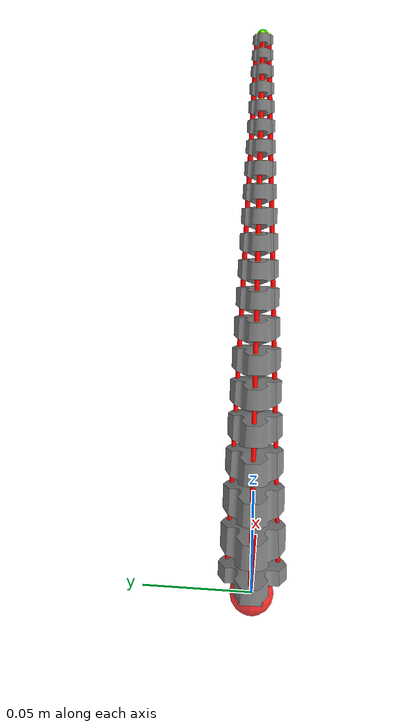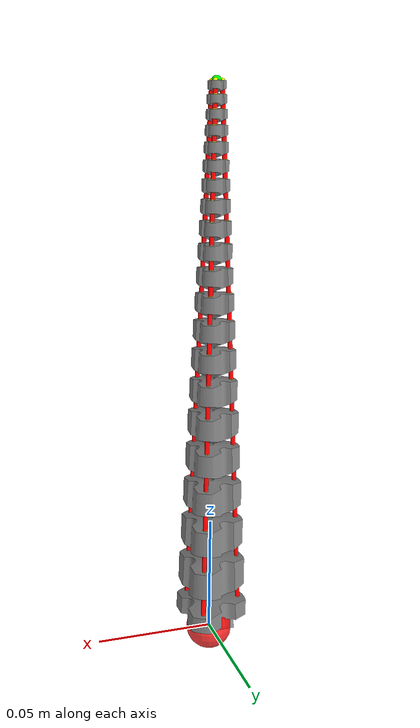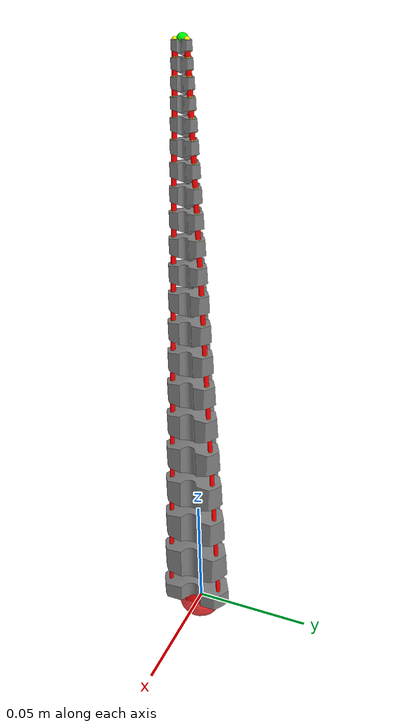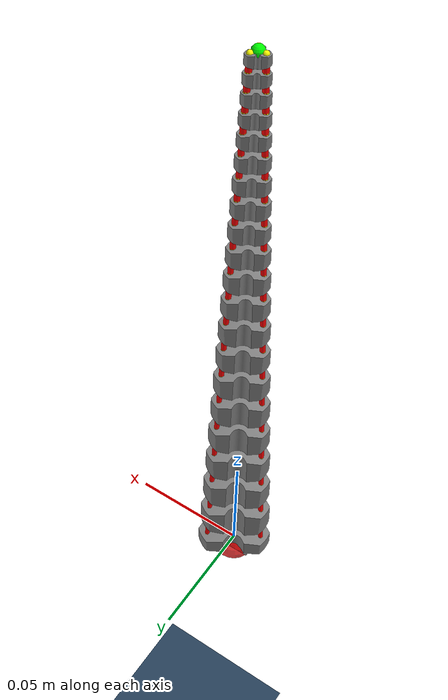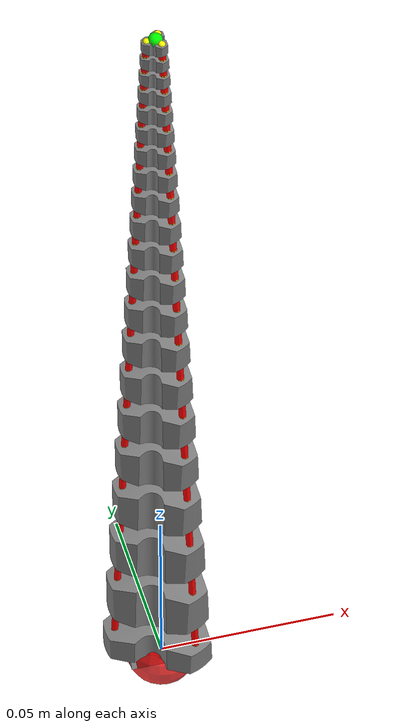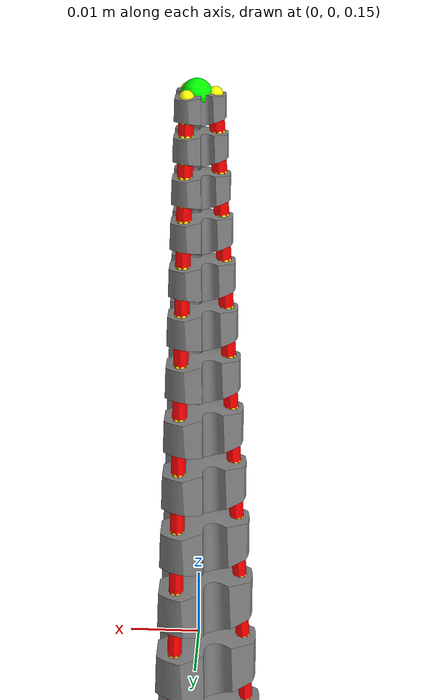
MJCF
<?xml version="1.0" ?>
<mujoco model="tentacle">
  <compiler angle="radian" autolimits="true"/>
  <option timestep="0.005" iterations="50"/>
  <default>
    <joint stiffness="0.0" damping="0.0" range="0 0.9"/>
    <geom type="mesh" xyaxes="0 0 -1 -1 0 0" contype="0" conaffinity="0" margin="0.001" solref="0.01 1" solimp="0.9 0.95 0.001"/>
  </default>
  <asset>
    <mesh name="mesh1" file="mujoco_rex_assets/Part1.stl" scale="0.001 0.001 0.001"/>
    <mesh name="mesh2" file="mujoco_rex_assets/Part2.stl" scale="0.001 0.001 0.001"/>
    <mesh name="mesh3" file="mujoco_rex_assets/Part3.stl" scale="0.001 0.001 0.001"/>
    <mesh name="mesh4" file="mujoco_rex_assets/Part4.stl" scale="0.001 0.001 0.001"/>
    <mesh name="mesh5" file="mujoco_rex_assets/Part5.stl" scale="0.001 0.001 0.001"/>
    <mesh name="mesh6" file="mujoco_rex_assets/Part6.stl" scale="0.001 0.001 0.001"/>
    <mesh name="mesh7" file="mujoco_rex_assets/Part7.stl" scale="0.001 0.001 0.001"/>
    <mesh name="mesh8" file="mujoco_rex_assets/Part8.stl" scale="0.001 0.001 0.001"/>
    <mesh name="mesh9" file="mujoco_rex_assets/Part9.stl" scale="0.001 0.001 0.001"/>
    <mesh name="mesh10" file="mujoco_rex_assets/Part10.stl" scale="0.001 0.001 0.001"/>
    <mesh name="mesh11" file="mujoco_rex_assets/Part11.stl" scale="0.001 0.001 0.001"/>
    <mesh name="mesh12" file="mujoco_rex_assets/Part12.stl" scale="0.001 0.001 0.001"/>
    <mesh name="mesh13" file="mujoco_rex_assets/Part13.stl" scale="0.001 0.001 0.001"/>
    <mesh name="mesh14" file="mujoco_rex_assets/Part14.stl" scale="0.001 0.001 0.001"/>
    <mesh name="mesh15" file="mujoco_rex_assets/Part15.stl" scale="0.001 0.001 0.001"/>
    <mesh name="mesh16" file="mujoco_rex_assets/Part16.stl" scale="0.001 0.001 0.001"/>
    <mesh name="mesh17" file="mujoco_rex_assets/Part17.stl" scale="0.001 0.001 0.001"/>
    <mesh name="mesh18" file="mujoco_rex_assets/Part18.stl" scale="0.001 0.001 0.001"/>
    <mesh name="mesh19" file="mujoco_rex_assets/Part19.stl" scale="0.001 0.001 0.001"/>
    <mesh name="mesh20" file="mujoco_rex_assets/Part20.stl" scale="0.001 0.001 0.001"/>
    <mesh name="mesh21" file="mujoco_rex_assets/Part21.stl" scale="0.001 0.001 0.001"/>
    <texture type="skybox" builtin="gradient" rgb1="0.3 0.5 0.7" rgb2="0 0 0" width="512" height="3072"/>
    <texture type="2d" name="groundplane" builtin="checker" mark="edge" rgb1="0.2 0.3 0.4" rgb2="0.1 0.2 0.3" markrgb="0.8 0.8 0.8" width="300" height="300"/>
    <material name="groundplane" texture="groundplane" texuniform="true" texrepeat="5 5" reflectance="0.2"/>
  </asset>
  <visual>
    <headlight diffuse="0.6 0.6 0.6" ambient="0.3 0.3 0.3" specular="0 0 0"/>
    <rgba haze="0.15 0.25 0.35 1"/>
    <global azimuth="150" elevation="-20"/>
  </visual>
  <worldbody>
    <light pos="0 0 3" dir="0 0 -1" directional="false"/>
    <geom name="floor" pos="0 0 -0.2" size="0 0 .125" type="plane" material="groundplane" conaffinity="0" condim="3" xyaxes="1 0 0 0 1 0"/>
    <camera name="fixed_overview" mode="fixed" pos="0 -0.5 0.7" quat="0.924 0.383 0 0" fovy="60"/>
    <camera name="tracking_cam" mode="fixed" pos="0.3 -0.3 0.4" quat="0.854 0.354 0.146 0.354" fovy="75"/>
    <site name="target" type="sphere" size="0.01 0.01 0.01" rgba="1 0 0 0.8" pos="0 0 0"/>
    <body name="body1" pos="0 0 0">
      <geom name="geom1" type="mesh" mesh="mesh1" contype="0" conaffinity="0"/>
      <body name="body2" pos="0 0 0">
        <geom name="geom2" type="mesh" mesh="mesh2" contype="0" conaffinity="0"/>
        <joint type="ball" name="joint1" pos="0 0 0.0143255" stiffness="0.14107" damping="0.0098749"/>
        <body name="body3" pos="0 0 0">
          <geom name="geom3" type="mesh" mesh="mesh3" contype="0" conaffinity="0"/>
          <joint type="ball" name="joint2" pos="0 0 0.034275" stiffness="0.12269" damping="0.0085881"/>
          <body name="body4" pos="0 0 0">
            <geom name="geom4" type="mesh" mesh="mesh4" contype="0" conaffinity="0"/>
            <joint type="ball" name="joint3" pos="0 0 0.052814" stiffness="0.1067" damping="0.007469"/>
            <body name="body5" pos="0 0 0">
              <geom name="geom5" type="mesh" mesh="mesh5" contype="0" conaffinity="0"/>
              <joint type="ball" name="joint4" pos="0 0 0.0700425" stiffness="0.092797" damping="0.0064958"/>
              <body name="body6" pos="0 0 0">
                <geom name="geom6" type="mesh" mesh="mesh6" contype="0" conaffinity="0"/>
                <joint type="ball" name="joint5" pos="0 0 0.0860535" stiffness="0.080705" damping="0.0056493"/>
                <body name="body7" pos="0 0 0">
                  <geom name="geom7" type="mesh" mesh="mesh7" contype="0" conaffinity="0"/>
                  <joint type="ball" name="joint6" pos="0 0 0.1009325" stiffness="0.070188" damping="0.0049132"/>
                  <body name="body8" pos="0 0 0">
                    <geom name="geom8" type="mesh" mesh="mesh8" contype="0" conaffinity="0"/>
                    <joint type="ball" name="joint7" pos="0 0 0.11476" stiffness="0.061042" damping="0.004273"/>
                    <body name="body9" pos="0 0 0">
                      <geom name="geom9" type="mesh" mesh="mesh9" contype="0" conaffinity="0"/>
                      <joint type="ball" name="joint8" pos="0 0 0.12761" stiffness="0.053088" damping="0.0037162"/>
                      <body name="body10" pos="0 0 0">
                        <geom name="geom10" type="mesh" mesh="mesh10" contype="0" conaffinity="0"/>
                        <joint type="ball" name="joint9" pos="0 0 0.13955" stiffness="0.04617" damping="0.0032319"/>
                        <body name="body11" pos="0 0 0">
                          <geom name="geom11" type="mesh" mesh="mesh11" contype="0" conaffinity="0"/>
                          <joint type="ball" name="joint10" pos="0 0 0.150649" stiffness="0.040154" damping="0.0028108"/>
                          <body name="body12" pos="0 0 0">
                            <geom name="geom12" type="mesh" mesh="mesh12" contype="0" conaffinity="0"/>
                            <joint type="ball" name="joint11" pos="0 0 0.160962" stiffness="0.034922" damping="0.0024445"/>
                            <body name="body13" pos="0 0 0">
                              <geom name="geom13" type="mesh" mesh="mesh13" contype="0" conaffinity="0"/>
                              <joint type="ball" name="joint12" pos="0 0 0.17055" stiffness="0.030371" damping="0.002126"/>
                              <body name="body14" pos="0 0 0">
                                <geom name="geom14" type="mesh" mesh="mesh14" contype="0" conaffinity="0"/>
                                <joint type="ball" name="joint13" pos="0 0 0.179453" stiffness="0.026414" damping="0.001849"/>
                                <body name="body15" pos="0 0 0">
                                  <geom name="geom15" type="mesh" mesh="mesh15" contype="0" conaffinity="0"/>
                                  <joint type="ball" name="joint14" pos="0 0 0.18773" stiffness="0.022972" damping="0.001608"/>
                                  <body name="body16" pos="0 0 0">
                                    <geom name="geom16" type="mesh" mesh="mesh16" contype="0" conaffinity="0"/>
                                    <joint type="ball" name="joint15" pos="0 0 0.19542" stiffness="0.019978" damping="0.0013985"/>
                                    <body name="body17" pos="0 0 0">
                                      <geom name="geom17" type="mesh" mesh="mesh17" contype="0" conaffinity="0"/>
                                      <joint type="ball" name="joint16" pos="0 0 0.202571" stiffness="0.017375" damping="0.0012163"/>
                                      <body name="body18" pos="0 0 0">
                                        <geom name="geom18" type="mesh" mesh="mesh18" contype="0" conaffinity="0"/>
                                        <joint type="ball" name="joint17" pos="0 0 0.2092135" stiffness="0.015111" damping="0.0010578"/>
                                        <body name="body19" pos="0 0 0">
                                          <geom name="geom19" type="mesh" mesh="mesh19" contype="0" conaffinity="0"/>
                                          <joint type="ball" name="joint18" pos="0 0 0.2153875" stiffness="0.013142" damping="0.00091994"/>
                                          <body name="body20" pos="0 0 0">
                                            <geom name="geom20" type="mesh" mesh="mesh20" contype="0" conaffinity="0"/>
                                            <joint type="ball" name="joint19" pos="0 0 0.2211245" stiffness="0.01143" damping="0.00080007"/>
                                            <body name="body21" pos="0 0 0">
                                              <geom name="geom21" type="mesh" mesh="mesh21" contype="0" conaffinity="0"/>
                                              <joint type="ball" name="joint20" pos="0 0 0.2264565" stiffness="0.0099402" damping="0.00069581"/>
                                              <site name="site_in_20_0" pos="0.00125 0.00216 0.22796" size="0.001" rgba="1 1 0 1"/>
                                              <site name="site_out_20_0" pos="0.00117 0.00204 0.23087" size="0.001" rgba="1 1 0 1"/>
                                              <site name="site_in_20_1" pos="-0.00250 0.00000 0.22796" size="0.001" rgba="1 1 0 1"/>
                                              <site name="site_out_20_1" pos="-0.00235 0.00000 0.23087" size="0.001" rgba="1 1 0 1"/>
                                              <site name="site_in_20_2" pos="0.00125 -0.00216 0.22796" size="0.001" rgba="1 1 0 1"/>
                                              <site name="site_out_20_2" pos="0.00117 -0.00204 0.23087" size="0.001" rgba="1 1 0 1"/>
                                              <site name="tip_center" pos="0 0 0.230871" size="0.002" rgba="0 1 0 1"/>
                                            </body>
                                            <site name="site_in_19_0" pos="0.00138 0.00239 0.22275" size="0.001" rgba="1 1 0 1"/>
                                            <site name="site_out_19_0" pos="0.00130 0.00225 0.22588" size="0.001" rgba="1 1 0 1"/>
                                            <site name="site_in_19_1" pos="-0.00276 0.00000 0.22275" size="0.001" rgba="1 1 0 1"/>
                                            <site name="site_out_19_1" pos="-0.00260 0.00000 0.22588" size="0.001" rgba="1 1 0 1"/>
                                            <site name="site_in_19_2" pos="0.00138 -0.00239 0.22275" size="0.001" rgba="1 1 0 1"/>
                                            <site name="site_out_19_2" pos="0.00130 -0.00225 0.22588" size="0.001" rgba="1 1 0 1"/>
                                          </body>
                                          <site name="site_in_18_0" pos="0.00152 0.00264 0.21713" size="0.001" rgba="1 1 0 1"/>
                                          <site name="site_out_18_0" pos="0.00144 0.00249 0.22050" size="0.001" rgba="1 1 0 1"/>
                                          <site name="site_in_18_1" pos="-0.00304 0.00000 0.21713" size="0.001" rgba="1 1 0 1"/>
                                          <site name="site_out_18_1" pos="-0.00287 0.00000 0.22050" size="0.001" rgba="1 1 0 1"/>
                                          <site name="site_in_18_2" pos="0.00152 -0.00264 0.21713" size="0.001" rgba="1 1 0 1"/>
                                          <site name="site_out_18_2" pos="0.00144 -0.00249 0.22050" size="0.001" rgba="1 1 0 1"/>
                                        </body>
                                        <site name="site_in_17_0" pos="0.00167 0.00290 0.21109" size="0.001" rgba="1 1 0 1"/>
                                        <site name="site_out_17_0" pos="0.00158 0.00274 0.21472" size="0.001" rgba="1 1 0 1"/>
                                        <site name="site_in_17_1" pos="-0.00335 0.00000 0.21109" size="0.001" rgba="1 1 0 1"/>
                                        <site name="site_out_17_1" pos="-0.00316 0.00000 0.21472" size="0.001" rgba="1 1 0 1"/>
                                        <site name="site_in_17_2" pos="0.00167 -0.00290 0.21109" size="0.001" rgba="1 1 0 1"/>
                                        <site name="site_out_17_2" pos="0.00158 -0.00274 0.21472" size="0.001" rgba="1 1 0 1"/>
                                      </body>
                                      <site name="site_in_16_0" pos="0.00184 0.00318 0.20459" size="0.001" rgba="1 1 0 1"/>
                                      <site name="site_out_16_0" pos="0.00174 0.00301 0.20849" size="0.001" rgba="1 1 0 1"/>
                                      <site name="site_in_16_1" pos="-0.00368 0.00000 0.20459" size="0.001" rgba="1 1 0 1"/>
                                      <site name="site_out_16_1" pos="-0.00348 0.00000 0.20849" size="0.001" rgba="1 1 0 1"/>
                                      <site name="site_in_16_2" pos="0.00184 -0.00318 0.20459" size="0.001" rgba="1 1 0 1"/>
                                      <site name="site_out_16_2" pos="0.00174 -0.00301 0.20849" size="0.001" rgba="1 1 0 1"/>
                                    </body>
                                    <site name="site_in_15_0" pos="0.00201 0.00349 0.19760" size="0.001" rgba="1 1 0 1"/>
                                    <site name="site_out_15_0" pos="0.00191 0.00331 0.20179" size="0.001" rgba="1 1 0 1"/>
                                    <site name="site_in_15_1" pos="-0.00403 0.00000 0.19760" size="0.001" rgba="1 1 0 1"/>
                                    <site name="site_out_15_1" pos="-0.00382 0.00000 0.20179" size="0.001" rgba="1 1 0 1"/>
                                    <site name="site_in_15_2" pos="0.00201 -0.00349 0.19760" size="0.001" rgba="1 1 0 1"/>
                                    <site name="site_out_15_2" pos="0.00191 -0.00331 0.20179" size="0.001" rgba="1 1 0 1"/>
                                  </body>
                                  <site name="site_in_14_0" pos="0.00220 0.00382 0.19007" size="0.001" rgba="1 1 0 1"/>
                                  <site name="site_out_14_0" pos="0.00209 0.00362 0.19459" size="0.001" rgba="1 1 0 1"/>
                                  <site name="site_in_14_1" pos="-0.00441 0.00000 0.19007" size="0.001" rgba="1 1 0 1"/>
                                  <site name="site_out_14_1" pos="-0.00418 0.00000 0.19459" size="0.001" rgba="1 1 0 1"/>
                                  <site name="site_in_14_2" pos="0.00220 -0.00382 0.19007" size="0.001" rgba="1 1 0 1"/>
                                  <site name="site_out_14_2" pos="0.00209 -0.00362 0.19459" size="0.001" rgba="1 1 0 1"/>
                                </body>
                                <site name="site_in_13_0" pos="0.00241 0.00417 0.18198" size="0.001" rgba="1 1 0 1"/>
                                <site name="site_out_13_0" pos="0.00229 0.00396 0.18684" size="0.001" rgba="1 1 0 1"/>
                                <site name="site_in_13_1" pos="-0.00482 0.00000 0.18198" size="0.001" rgba="1 1 0 1"/>
                                <site name="site_out_13_1" pos="-0.00457 0.00000 0.18684" size="0.001" rgba="1 1 0 1"/>
                                <site name="site_in_13_2" pos="0.00241 -0.00417 0.18198" size="0.001" rgba="1 1 0 1"/>
                                <site name="site_out_13_2" pos="0.00229 -0.00396 0.18684" size="0.001" rgba="1 1 0 1"/>
                              </body>
                              <site name="site_in_12_0" pos="0.00263 0.00455 0.17326" size="0.001" rgba="1 1 0 1"/>
                              <site name="site_out_12_0" pos="0.00250 0.00432 0.17849" size="0.001" rgba="1 1 0 1"/>
                              <site name="site_in_12_1" pos="-0.00526 0.00000 0.17326" size="0.001" rgba="1 1 0 1"/>
                              <site name="site_out_12_1" pos="-0.00499 0.00000 0.17849" size="0.001" rgba="1 1 0 1"/>
                              <site name="site_in_12_2" pos="0.00263 -0.00455 0.17326" size="0.001" rgba="1 1 0 1"/>
                              <site name="site_out_12_2" pos="0.00250 -0.00432 0.17849" size="0.001" rgba="1 1 0 1"/>
                            </body>
                            <site name="site_in_11_0" pos="0.00286 0.00496 0.16389" size="0.001" rgba="1 1 0 1"/>
                            <site name="site_out_11_0" pos="0.00272 0.00471 0.16951" size="0.001" rgba="1 1 0 1"/>
                            <site name="site_in_11_1" pos="-0.00573 0.00000 0.16389" size="0.001" rgba="1 1 0 1"/>
                            <site name="site_out_11_1" pos="-0.00544 0.00000 0.16951" size="0.001" rgba="1 1 0 1"/>
                            <site name="site_in_11_2" pos="0.00286 -0.00496 0.16389" size="0.001" rgba="1 1 0 1"/>
                            <site name="site_out_11_2" pos="0.00272 -0.00471 0.16951" size="0.001" rgba="1 1 0 1"/>
                          </body>
                          <site name="site_in_10_0" pos="0.00312 0.00540 0.15379" size="0.001" rgba="1 1 0 1"/>
                          <site name="site_out_10_0" pos="0.00297 0.00514 0.15985" size="0.001" rgba="1 1 0 1"/>
                          <site name="site_in_10_1" pos="-0.00624 0.00000 0.15379" size="0.001" rgba="1 1 0 1"/>
                          <site name="site_out_10_1" pos="-0.00593 0.00000 0.15985" size="0.001" rgba="1 1 0 1"/>
                          <site name="site_in_10_2" pos="0.00312 -0.00540 0.15379" size="0.001" rgba="1 1 0 1"/>
                          <site name="site_out_10_2" pos="0.00297 -0.00514 0.15985" size="0.001" rgba="1 1 0 1"/>
                        </body>
                        <site name="site_in_9_0" pos="0.00339 0.00588 0.14294" size="0.001" rgba="1 1 0 1"/>
                        <site name="site_out_9_0" pos="0.00323 0.00559 0.14945" size="0.001" rgba="1 1 0 1"/>
                        <site name="site_in_9_1" pos="-0.00678 0.00000 0.14294" size="0.001" rgba="1 1 0 1"/>
                        <site name="site_out_9_1" pos="-0.00646 0.00000 0.14945" size="0.001" rgba="1 1 0 1"/>
                        <site name="site_in_9_2" pos="0.00339 -0.00588 0.14294" size="0.001" rgba="1 1 0 1"/>
                        <site name="site_out_9_2" pos="0.00323 -0.00559 0.14945" size="0.001" rgba="1 1 0 1"/>
                      </body>
                      <site name="site_in_8_0" pos="0.00369 0.00639 0.13125" size="0.001" rgba="1 1 0 1"/>
                      <site name="site_out_8_0" pos="0.00351 0.00608 0.13826" size="0.001" rgba="1 1 0 1"/>
                      <site name="site_in_8_1" pos="-0.00737 0.00000 0.13125" size="0.001" rgba="1 1 0 1"/>
                      <site name="site_out_8_1" pos="-0.00702 0.00000 0.13826" size="0.001" rgba="1 1 0 1"/>
                      <site name="site_in_8_2" pos="0.00369 -0.00639 0.13125" size="0.001" rgba="1 1 0 1"/>
                      <site name="site_out_8_2" pos="0.00351 -0.00608 0.13826" size="0.001" rgba="1 1 0 1"/>
                    </body>
                    <site name="site_in_7_0" pos="0.00400 0.00693 0.11868" size="0.001" rgba="1 1 0 1"/>
                    <site name="site_out_7_0" pos="0.00381 0.00661 0.12622" size="0.001" rgba="1 1 0 1"/>
                    <site name="site_in_7_1" pos="-0.00801 0.00000 0.11868" size="0.001" rgba="1 1 0 1"/>
                    <site name="site_out_7_1" pos="-0.00763 0.00000 0.12622" size="0.001" rgba="1 1 0 1"/>
                    <site name="site_in_7_2" pos="0.00400 -0.00693 0.11868" size="0.001" rgba="1 1 0 1"/>
                    <site name="site_out_7_2" pos="0.00381 -0.00661 0.12622" size="0.001" rgba="1 1 0 1"/>
                  </body>
                  <site name="site_in_6_0" pos="0.00434 0.00753 0.10515" size="0.001" rgba="1 1 0 1"/>
                  <site name="site_out_6_0" pos="0.00414 0.00717 0.11327" size="0.001" rgba="1 1 0 1"/>
                  <site name="site_in_6_1" pos="-0.00869 0.00000 0.10515" size="0.001" rgba="1 1 0 1"/>
                  <site name="site_out_6_1" pos="-0.00828 0.00000 0.11327" size="0.001" rgba="1 1 0 1"/>
                  <site name="site_in_6_2" pos="0.00434 -0.00753 0.10515" size="0.001" rgba="1 1 0 1"/>
                  <site name="site_out_6_2" pos="0.00414 -0.00717 0.11327" size="0.001" rgba="1 1 0 1"/>
                </body>
                <site name="site_in_5_0" pos="0.00471 0.00816 0.09060" size="0.001" rgba="1 1 0 1"/>
                <site name="site_out_5_0" pos="0.00449 0.00778 0.09933" size="0.001" rgba="1 1 0 1"/>
                <site name="site_in_5_1" pos="-0.00942 0.00000 0.09060" size="0.001" rgba="1 1 0 1"/>
                <site name="site_out_5_1" pos="-0.00898 0.00000 0.09933" size="0.001" rgba="1 1 0 1"/>
                <site name="site_in_5_2" pos="0.00471 -0.00816 0.09060" size="0.001" rgba="1 1 0 1"/>
                <site name="site_out_5_2" pos="0.00449 -0.00778 0.09933" size="0.001" rgba="1 1 0 1"/>
              </body>
              <site name="site_in_4_0" pos="0.00511 0.00885 0.07493" size="0.001" rgba="1 1 0 1"/>
              <site name="site_out_4_0" pos="0.00487 0.00843 0.08433" size="0.001" rgba="1 1 0 1"/>
              <site name="site_in_4_1" pos="-0.01021 0.00000 0.07493" size="0.001" rgba="1 1 0 1"/>
              <site name="site_out_4_1" pos="-0.00974 0.00000 0.08433" size="0.001" rgba="1 1 0 1"/>
              <site name="site_in_4_2" pos="0.00511 -0.00885 0.07493" size="0.001" rgba="1 1 0 1"/>
              <site name="site_out_4_2" pos="0.00487 -0.00843 0.08433" size="0.001" rgba="1 1 0 1"/>
            </body>
            <site name="site_in_3_0" pos="0.00553 0.00958 0.05808" size="0.001" rgba="1 1 0 1"/>
            <site name="site_out_3_0" pos="0.00528 0.00914 0.06819" size="0.001" rgba="1 1 0 1"/>
            <site name="site_in_3_1" pos="-0.01106 0.00000 0.05808" size="0.001" rgba="1 1 0 1"/>
            <site name="site_out_3_1" pos="-0.01055 0.00000 0.06819" size="0.001" rgba="1 1 0 1"/>
            <site name="site_in_3_2" pos="0.00553 -0.00958 0.05808" size="0.001" rgba="1 1 0 1"/>
            <site name="site_out_3_2" pos="0.00528 -0.00914 0.06819" size="0.001" rgba="1 1 0 1"/>
          </body>
          <site name="site_in_2_0" pos="0.00599 0.01037 0.03994" size="0.001" rgba="1 1 0 1"/>
          <site name="site_out_2_0" pos="0.00571 0.00990 0.05082" size="0.001" rgba="1 1 0 1"/>
          <site name="site_in_2_1" pos="-0.01198 0.00000 0.03994" size="0.001" rgba="1 1 0 1"/>
          <site name="site_out_2_1" pos="-0.01143 0.00000 0.05082" size="0.001" rgba="1 1 0 1"/>
          <site name="site_in_2_2" pos="0.00599 -0.01037 0.03994" size="0.001" rgba="1 1 0 1"/>
          <site name="site_out_2_2" pos="0.00571 -0.00990 0.05082" size="0.001" rgba="1 1 0 1"/>
        </body>
        <site name="site_in_1_0" pos="0.00648 0.01123 0.02042" size="0.001" rgba="1 1 0 1"/>
        <site name="site_out_1_0" pos="0.00619 0.01071 0.03213" size="0.001" rgba="1 1 0 1"/>
        <site name="site_in_1_1" pos="-0.01296 0.00000 0.02042" size="0.001" rgba="1 1 0 1"/>
        <site name="site_out_1_1" pos="-0.01237 0.00000 0.03213" size="0.001" rgba="1 1 0 1"/>
        <site name="site_in_1_2" pos="0.00648 -0.01123 0.02042" size="0.001" rgba="1 1 0 1"/>
        <site name="site_out_1_2" pos="0.00619 -0.01071 0.03213" size="0.001" rgba="1 1 0 1"/>
      </body>
      <site name="site_in_0_0" pos="0.00687 0.01190 0.00500" size="0.001" rgba="1 1 0 1"/>
      <site name="site_out_0_0" pos="0.00669 0.01159 0.01202" size="0.001" rgba="1 1 0 1"/>
      <site name="site_in_0_1" pos="-0.01374 0.00000 0.00500" size="0.001" rgba="1 1 0 1"/>
      <site name="site_out_0_1" pos="-0.01339 0.00000 0.01202" size="0.001" rgba="1 1 0 1"/>
      <site name="site_in_0_2" pos="0.00687 -0.01190 0.00500" size="0.001" rgba="1 1 0 1"/>
      <site name="site_out_0_2" pos="0.00669 -0.01159 0.01202" size="0.001" rgba="1 1 0 1"/>
    </body>
  </worldbody>
  <tendon>
    <spatial name="tendon_1" width="0.001" rgba="1 0 0 1">
      <site site="site_in_0_0"/>
      <site site="site_out_0_0"/>
      <site site="site_in_1_0"/>
      <site site="site_out_1_0"/>
      <site site="site_in_2_0"/>
      <site site="site_out_2_0"/>
      <site site="site_in_3_0"/>
      <site site="site_out_3_0"/>
      <site site="site_in_4_0"/>
      <site site="site_out_4_0"/>
      <site site="site_in_5_0"/>
      <site site="site_out_5_0"/>
      <site site="site_in_6_0"/>
      <site site="site_out_6_0"/>
      <site site="site_in_7_0"/>
      <site site="site_out_7_0"/>
      <site site="site_in_8_0"/>
      <site site="site_out_8_0"/>
      <site site="site_in_9_0"/>
      <site site="site_out_9_0"/>
      <site site="site_in_10_0"/>
      <site site="site_out_10_0"/>
    </spatial>
    <spatial name="tendon_2" width="0.001" rgba="1 0 0 1">
      <site site="site_in_0_1"/>
      <site site="site_out_0_1"/>
      <site site="site_in_1_1"/>
      <site site="site_out_1_1"/>
      <site site="site_in_2_1"/>
      <site site="site_out_2_1"/>
      <site site="site_in_3_1"/>
      <site site="site_out_3_1"/>
      <site site="site_in_4_1"/>
      <site site="site_out_4_1"/>
      <site site="site_in_5_1"/>
      <site site="site_out_5_1"/>
      <site site="site_in_6_1"/>
      <site site="site_out_6_1"/>
      <site site="site_in_7_1"/>
      <site site="site_out_7_1"/>
      <site site="site_in_8_1"/>
      <site site="site_out_8_1"/>
      <site site="site_in_9_1"/>
      <site site="site_out_9_1"/>
      <site site="site_in_10_1"/>
      <site site="site_out_10_1"/>
    </spatial>
    <spatial name="tendon_3" width="0.001" rgba="1 0 0 1">
      <site site="site_in_0_2"/>
      <site site="site_out_0_2"/>
      <site site="site_in_1_2"/>
      <site site="site_out_1_2"/>
      <site site="site_in_2_2"/>
      <site site="site_out_2_2"/>
      <site site="site_in_3_2"/>
      <site site="site_out_3_2"/>
      <site site="site_in_4_2"/>
      <site site="site_out_4_2"/>
      <site site="site_in_5_2"/>
      <site site="site_out_5_2"/>
      <site site="site_in_6_2"/>
      <site site="site_out_6_2"/>
      <site site="site_in_7_2"/>
      <site site="site_out_7_2"/>
      <site site="site_in_8_2"/>
      <site site="site_out_8_2"/>
      <site site="site_in_9_2"/>
      <site site="site_out_9_2"/>
      <site site="site_in_10_2"/>
      <site site="site_out_10_2"/>
    </spatial>
    <spatial name="tendon_4" width="0.001" rgba="1 0 0 1">
      <site site="site_in_10_0"/>
      <site site="site_out_10_0"/>
      <site site="site_in_11_0"/>
      <site site="site_out_11_0"/>
      <site site="site_in_12_0"/>
      <site site="site_out_12_0"/>
      <site site="site_in_13_0"/>
      <site site="site_out_13_0"/>
      <site site="site_in_14_0"/>
      <site site="site_out_14_0"/>
      <site site="site_in_15_0"/>
      <site site="site_out_15_0"/>
      <site site="site_in_16_0"/>
      <site site="site_out_16_0"/>
      <site site="site_in_17_0"/>
      <site site="site_out_17_0"/>
      <site site="site_in_18_0"/>
      <site site="site_out_18_0"/>
      <site site="site_in_19_0"/>
      <site site="site_out_19_0"/>
      <site site="site_in_20_0"/>
      <site site="site_out_20_0"/>
    </spatial>
    <spatial name="tendon_5" width="0.001" rgba="1 0 0 1">
      <site site="site_in_10_1"/>
      <site site="site_out_10_1"/>
      <site site="site_in_11_1"/>
      <site site="site_out_11_1"/>
      <site site="site_in_12_1"/>
      <site site="site_out_12_1"/>
      <site site="site_in_13_1"/>
      <site site="site_out_13_1"/>
      <site site="site_in_14_1"/>
      <site site="site_out_14_1"/>
      <site site="site_in_15_1"/>
      <site site="site_out_15_1"/>
      <site site="site_in_16_1"/>
      <site site="site_out_16_1"/>
      <site site="site_in_17_1"/>
      <site site="site_out_17_1"/>
      <site site="site_in_18_1"/>
      <site site="site_out_18_1"/>
      <site site="site_in_19_1"/>
      <site site="site_out_19_1"/>
      <site site="site_in_20_1"/>
      <site site="site_out_20_1"/>
    </spatial>
    <spatial name="tendon_6" width="0.001" rgba="1 0 0 1">
      <site site="site_in_10_2"/>
      <site site="site_out_10_2"/>
      <site site="site_in_11_2"/>
      <site site="site_out_11_2"/>
      <site site="site_in_12_2"/>
      <site site="site_out_12_2"/>
      <site site="site_in_13_2"/>
      <site site="site_out_13_2"/>
      <site site="site_in_14_2"/>
      <site site="site_out_14_2"/>
      <site site="site_in_15_2"/>
      <site site="site_out_15_2"/>
      <site site="site_in_16_2"/>
      <site site="site_out_16_2"/>
      <site site="site_in_17_2"/>
      <site site="site_out_17_2"/>
      <site site="site_in_18_2"/>
      <site site="site_out_18_2"/>
      <site site="site_in_19_2"/>
      <site site="site_out_19_2"/>
      <site site="site_in_20_2"/>
      <site site="site_out_20_2"/>
    </spatial>
  </tendon>
  <actuator>
    <position name="actuator_1" tendon="tendon_1" kp="200.0" forcerange="-200 0" ctrlrange="0.0600 0.1700"/>
    <position name="actuator_2" tendon="tendon_2" kp="200.0" forcerange="-200 0" ctrlrange="0.0600 0.1700"/>
    <position name="actuator_3" tendon="tendon_3" kp="200.0" forcerange="-200 0" ctrlrange="0.0600 0.1700"/>
    <position name="actuator_4" tendon="tendon_4" kp="200.0" forcerange="-200 0" ctrlrange="0.0600 0.1700"/>
    <position name="actuator_5" tendon="tendon_5" kp="200.0" forcerange="-200 0" ctrlrange="0.0600 0.1700"/>
    <position name="actuator_6" tendon="tendon_6" kp="200.0" forcerange="-200 0" ctrlrange="0.0600 0.1700"/>
  </actuator>
  <sensor>
    <tendonpos name="tendon1_pos" tendon="tendon_1"/>
    <tendonpos name="tendon2_pos" tendon="tendon_2"/>
    <tendonpos name="tendon3_pos" tendon="tendon_3"/>
    <tendonpos name="tendon4_pos" tendon="tendon_4"/>
    <tendonpos name="tendon5_pos" tendon="tendon_5"/>
    <tendonpos name="tendon6_pos" tendon="tendon_6"/>
  </sensor>
</mujoco>
